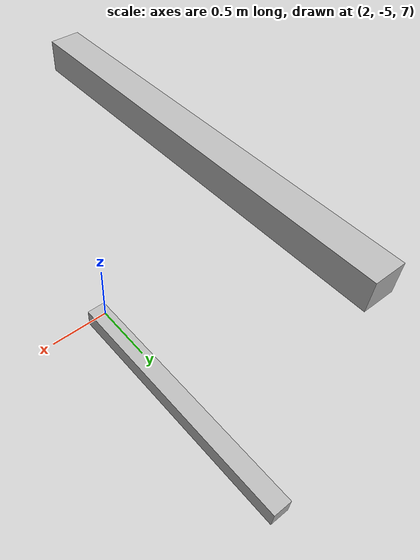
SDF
<sdf version="1.7">
 <world name="default">
  <model name="orthogonal_747_2.000.15_TS">
   <static>1</static>
   <link name="y_link_4_0_4">
    <inertial>
     <mass>1</mass>
     <inertia>
      <ixx>0.166667</ixx>
      <ixy>0</ixy>
      <ixz>0</ixz>
      <iyy>0.166667</iyy>
      <iyz>0</iyz>
      <izz>0.166667</izz>
     </inertia>
    </inertial>
    <pose>8.6 1.075 9.675 0 -0 0</pose>
    <visual name="visual_0">
     <laser_retro>3578</laser_retro>
     <geometry><box><size>0.15 1e-06 0.15</size></box></geometry>
     <material>
      <script><name>Gazebo/Grey</name><uri>file://media/materials/scripts/gazebo.material</uri></script>
      <shader type="pixel"><normal_map>__default__</normal_map></shader>
      <ambient>0.678 0.498 0.659 1</ambient>
      <diffuse>0.7 0.7 0.7 1</diffuse>
      <specular>0.01 0.01 0.01 1</specular>
      <emissive>0 0 0 1</emissive>
     </material>
     <pose>0 -1 0 0 -0 0</pose>
     <transparency>1</transparency>
    </visual>
    <visual name="visual_1">
     <laser_retro>3579</laser_retro>
     <geometry><box><size>0.15 1e-06 0.15</size></box></geometry>
     <material>
      <script><name>Gazebo/Grey</name><uri>file://media/materials/scripts/gazebo.material</uri></script>
      <shader type="pixel"><normal_map>__default__</normal_map></shader>
      <ambient>0.447 0.624 0.812 1</ambient>
      <diffuse>0.7 0.7 0.7 1</diffuse>
      <specular>0.01 0.01 0.01 1</specular>
      <emissive>0 0 0 1</emissive>
     </material>
     <pose>0 1 0 0 -0 0</pose>
     <transparency>1</transparency>
    </visual>
    <visual name="visual_2">
     <laser_retro>3580</laser_retro>
     <geometry><box><size>0.15 2 1e-06</size></box></geometry>
     <material>
      <script><name>Gazebo/Grey</name><uri>file://media/materials/scripts/gazebo.material</uri></script>
      <shader type="pixel"><normal_map>__default__</normal_map></shader>
      <ambient>0.988 0.686 0.243 1</ambient>
      <diffuse>0.7 0.7 0.7 1</diffuse>
      <specular>0.01 0.01 0.01 1</specular>
      <emissive>0 0 0 1</emissive>
     </material>
     <pose>0 0 -0.075 0 -0 0</pose>
     <transparency>1</transparency>
    </visual>
    <visual name="visual_3">
     <laser_retro>3581</laser_retro>
     <geometry><box><size>1e-06 2 0.15</size></box></geometry>
     <material>
      <script><name>Gazebo/Grey</name><uri>file://media/materials/scripts/gazebo.material</uri></script>
      <shader type="pixel"><normal_map>__default__</normal_map></shader>
      <ambient>0.988 0.914 0.31 1</ambient>
      <diffuse>0.7 0.7 0.7 1</diffuse>
      <specular>0.01 0.01 0.01 1</specular>
      <emissive>0 0 0 1</emissive>
     </material>
     <pose>0.075 0 0 0 -0 0</pose>
     <transparency>1</transparency>
    </visual>
    <visual name="visual_4">
     <laser_retro>3582</laser_retro>
     <geometry><box><size>0.15 2 1e-06</size></box></geometry>
     <material>
      <script><name>Gazebo/Grey</name><uri>file://media/materials/scripts/gazebo.material</uri></script>
      <shader type="pixel"><normal_map>__default__</normal_map></shader>
      <ambient>0.937 0.161 0.161 1</ambient>
      <diffuse>0.7 0.7 0.7 1</diffuse>
      <specular>0.01 0.01 0.01 1</specular>
      <emissive>0 0 0 1</emissive>
     </material>
     <pose>0 0 0.075 0 -0 0</pose>
     <transparency>1</transparency>
    </visual>
    <visual name="visual_5">
     <laser_retro>3583</laser_retro>
     <geometry><box><size>1e-06 2 0.15</size></box></geometry>
     <material>
      <script><name>Gazebo/Grey</name><uri>file://media/materials/scripts/gazebo.material</uri></script>
      <shader type="pixel"><normal_map>__default__</normal_map></shader>
      <ambient>0.541 0.886 0.204 1</ambient>
      <diffuse>0.7 0.7 0.7 1</diffuse>
      <specular>0.01 0.01 0.01 1</specular>
      <emissive>0 0 0 1</emissive>
     </material>
     <pose>-0.075 0 0 0 -0 0</pose>
     <transparency>1</transparency>
    </visual>
    <visual name="visual_texture">
     <geometry><box><size>0.149985 1.9998 0.149985</size></box></geometry>
     <material>
      <script>
       <uri>model://BASE_MODELS/simple_block_v2_textured/materials/scripts</uri>
       <uri>model://BASE_MODELS/simple_block_v2_textured/materials/textures</uri>
       <name>metal</name>
      </script>
     </material>
     <laser_retro>3584</laser_retro>
    </visual>
    <collision name="collision">
     <geometry><box><size>0.15 2 0.15</size></box></geometry>
     <surface>
      <friction>
       <ode><mu>1</mu><mu2>1</mu2><fdir1>0 0 0</fdir1><slip1>0</slip1><slip2>0</slip2></ode>
       <torsional>
        <coefficient>1</coefficient>
        <patch_radius>0</patch_radius>
        <surface_radius>0</surface_radius>
        <use_patch_radius>1</use_patch_radius>
        <ode><slip>0</slip></ode>
       </torsional>
      </friction>
      <bounce><restitution_coefficient>0</restitution_coefficient><threshold>1e+06</threshold></bounce>
      <contact>
       <collide_without_contact>0</collide_without_contact>
       <collide_without_contact_bitmask>1</collide_without_contact_bitmask>
       <collide_bitmask>1</collide_bitmask>
       <ode>
        <soft_cfm>0</soft_cfm>
        <soft_erp>0.2</soft_erp>
        <kp>1e+13</kp>
        <kd>1</kd>
        <max_vel>0.01</max_vel>
        <min_depth>0</min_depth>
       </ode>
       <bullet>
        <split_impulse>1</split_impulse>
        <split_impulse_penetration_threshold>-0.01</split_impulse_penetration_threshold>
        <soft_cfm>0</soft_cfm>
        <soft_erp>0.2</soft_erp>
        <kp>1e+13</kp>
        <kd>1</kd>
       </bullet>
      </contact>
     </surface>
    </collision>
   </link>
   <link name="y_link_5_0_4">
    <inertial>
     <mass>1</mass>
     <inertia>
      <ixx>0.166667</ixx>
      <ixy>0</ixy>
      <ixz>0</ixz>
      <iyy>0.166667</iyy>
      <iyz>0</iyz>
      <izz>0.166667</izz>
     </inertia>
    </inertial>
    <pose>8.6 1.075 11.825 0 -0 0</pose>
    <visual name="visual_0">
     <laser_retro>4481</laser_retro>
     <geometry><box><size>0.15 1e-06 0.15</size></box></geometry>
     <material>
      <script><name>Gazebo/Grey</name><uri>file://media/materials/scripts/gazebo.material</uri></script>
      <shader type="pixel"><normal_map>__default__</normal_map></shader>
      <ambient>0.678 0.498 0.659 1</ambient>
      <diffuse>0.7 0.7 0.7 1</diffuse>
      <specular>0.01 0.01 0.01 1</specular>
      <emissive>0 0 0 1</emissive>
     </material>
     <pose>0 -1 0 0 -0 0</pose>
     <transparency>1</transparency>
    </visual>
    <visual name="visual_1">
     <laser_retro>4482</laser_retro>
     <geometry><box><size>0.15 1e-06 0.15</size></box></geometry>
     <material>
      <script><name>Gazebo/Grey</name><uri>file://media/materials/scripts/gazebo.material</uri></script>
      <shader type="pixel"><normal_map>__default__</normal_map></shader>
      <ambient>0.447 0.624 0.812 1</ambient>
      <diffuse>0.7 0.7 0.7 1</diffuse>
      <specular>0.01 0.01 0.01 1</specular>
      <emissive>0 0 0 1</emissive>
     </material>
     <pose>0 1 0 0 -0 0</pose>
     <transparency>1</transparency>
    </visual>
    <visual name="visual_2">
     <laser_retro>4483</laser_retro>
     <geometry><box><size>0.15 2 1e-06</size></box></geometry>
     <material>
      <script><name>Gazebo/Grey</name><uri>file://media/materials/scripts/gazebo.material</uri></script>
      <shader type="pixel"><normal_map>__default__</normal_map></shader>
      <ambient>0.988 0.686 0.243 1</ambient>
      <diffuse>0.7 0.7 0.7 1</diffuse>
      <specular>0.01 0.01 0.01 1</specular>
      <emissive>0 0 0 1</emissive>
     </material>
     <pose>0 0 -0.075 0 -0 0</pose>
     <transparency>1</transparency>
    </visual>
    <visual name="visual_3">
     <laser_retro>4484</laser_retro>
     <geometry><box><size>1e-06 2 0.15</size></box></geometry>
     <material>
      <script><name>Gazebo/Grey</name><uri>file://media/materials/scripts/gazebo.material</uri></script>
      <shader type="pixel"><normal_map>__default__</normal_map></shader>
      <ambient>0.988 0.914 0.31 1</ambient>
      <diffuse>0.7 0.7 0.7 1</diffuse>
      <specular>0.01 0.01 0.01 1</specular>
      <emissive>0 0 0 1</emissive>
     </material>
     <pose>0.075 0 0 0 -0 0</pose>
     <transparency>1</transparency>
    </visual>
    <visual name="visual_4">
     <laser_retro>4485</laser_retro>
     <geometry><box><size>0.15 2 1e-06</size></box></geometry>
     <material>
      <script><name>Gazebo/Grey</name><uri>file://media/materials/scripts/gazebo.material</uri></script>
      <shader type="pixel"><normal_map>__default__</normal_map></shader>
      <ambient>0.937 0.161 0.161 1</ambient>
      <diffuse>0.7 0.7 0.7 1</diffuse>
      <specular>0.01 0.01 0.01 1</specular>
      <emissive>0 0 0 1</emissive>
     </material>
     <pose>0 0 0.075 0 -0 0</pose>
     <transparency>1</transparency>
    </visual>
    <visual name="visual_5">
     <laser_retro>4486</laser_retro>
     <geometry><box><size>1e-06 2 0.15</size></box></geometry>
     <material>
      <script><name>Gazebo/Grey</name><uri>file://media/materials/scripts/gazebo.material</uri></script>
      <shader type="pixel"><normal_map>__default__</normal_map></shader>
      <ambient>0.541 0.886 0.204 1</ambient>
      <diffuse>0.7 0.7 0.7 1</diffuse>
      <specular>0.01 0.01 0.01 1</specular>
      <emissive>0 0 0 1</emissive>
     </material>
     <pose>-0.075 0 0 0 -0 0</pose>
     <transparency>1</transparency>
    </visual>
    <visual name="visual_texture">
     <geometry><box><size>0.149985 1.9998 0.149985</size></box></geometry>
     <material>
      <script>
       <uri>model://BASE_MODELS/simple_block_v2_textured/materials/scripts</uri>
       <uri>model://BASE_MODELS/simple_block_v2_textured/materials/textures</uri>
       <name>metal</name>
      </script>
     </material>
     <laser_retro>4487</laser_retro>
    </visual>
    <collision name="collision">
     <geometry><box><size>0.15 2 0.15</size></box></geometry>
     <surface>
      <friction>
       <ode><mu>1</mu><mu2>1</mu2><fdir1>0 0 0</fdir1><slip1>0</slip1><slip2>0</slip2></ode>
       <torsional>
        <coefficient>1</coefficient>
        <patch_radius>0</patch_radius>
        <surface_radius>0</surface_radius>
        <use_patch_radius>1</use_patch_radius>
        <ode><slip>0</slip></ode>
       </torsional>
      </friction>
      <bounce><restitution_coefficient>0</restitution_coefficient><threshold>1e+06</threshold></bounce>
      <contact>
       <collide_without_contact>0</collide_without_contact>
       <collide_without_contact_bitmask>1</collide_without_contact_bitmask>
       <collide_bitmask>1</collide_bitmask>
       <ode>
        <soft_cfm>0</soft_cfm>
        <soft_erp>0.2</soft_erp>
        <kp>1e+13</kp>
        <kd>1</kd>
        <max_vel>0.01</max_vel>
        <min_depth>0</min_depth>
       </ode>
       <bullet>
        <split_impulse>1</split_impulse>
        <split_impulse_penetration_threshold>-0.01</split_impulse_penetration_threshold>
        <soft_cfm>0</soft_cfm>
        <soft_erp>0.2</soft_erp>
        <kp>1e+13</kp>
        <kd>1</kd>
       </bullet>
      </contact>
     </surface>
    </collision>
   </link>
   <pose>-6.47624 -5 -2.5 0 -0 0</pose>
  </model>
 </world>
</sdf>
